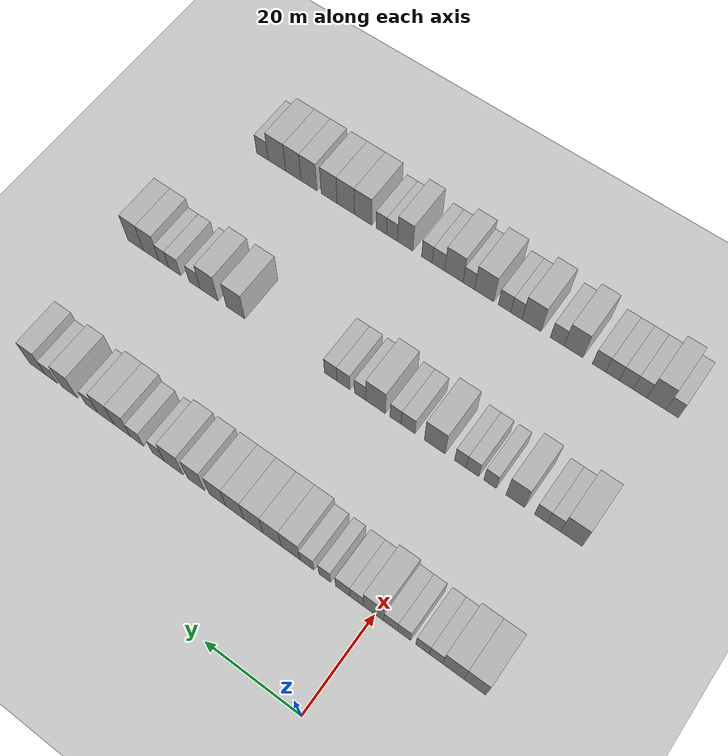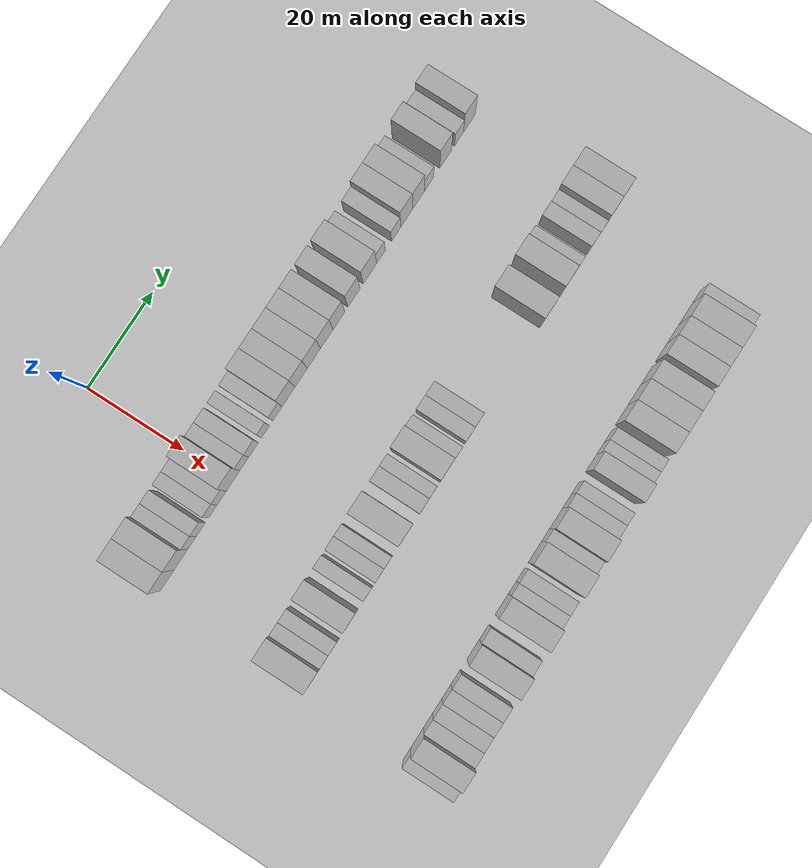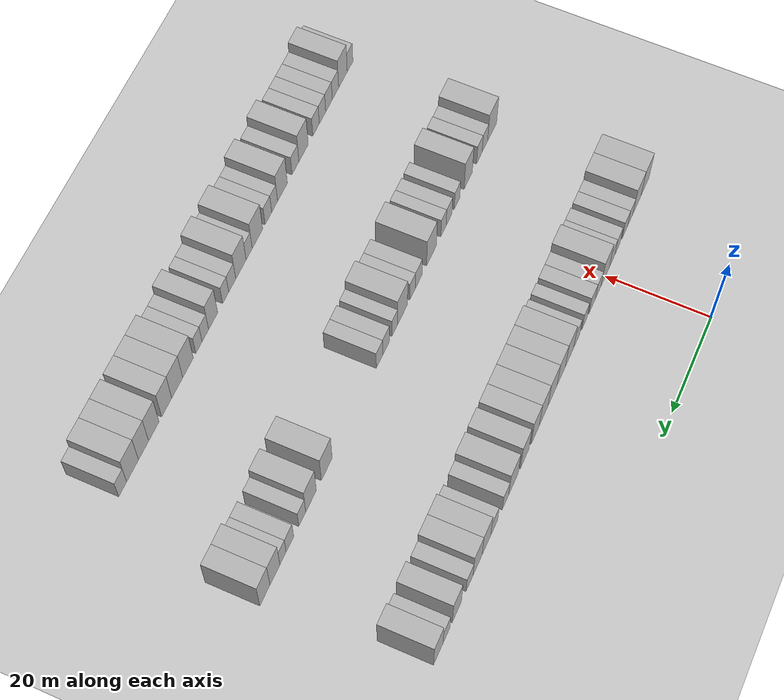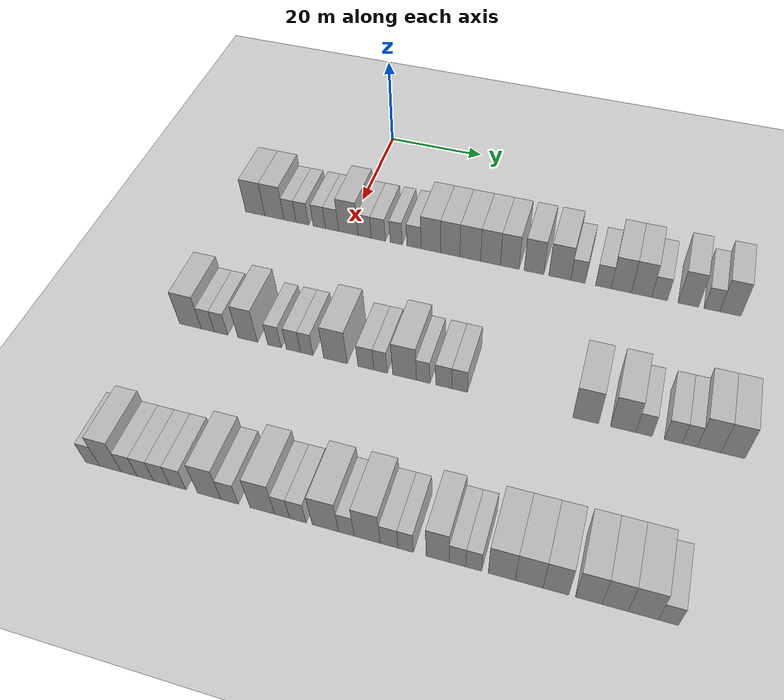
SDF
<sdf version="1.6">
 <world name="default">
  <include><name>ground_plane_1</name><uri>model://HANNAS_ground_plane</uri></include>
  <model name="building_108">
   <static>1</static>
   <pose>25.0000 -19.8867 0 0.000000 0.000000 0.000000</pose>
   <link name="link">
    <pose>0 0 4.50 0 0 0</pose>
    <collision name="collision"><geometry><box><size>10.0000 4.2221 9.0000</size></box></geometry></collision>
    <visual name="visual">
     <cast_shadows>0</cast_shadows>
     <geometry><box><size>10.0000 4.2221 9.0000</size></box></geometry>
     <material>
      <script>
       <uri>model://HANNAS_wall/materials/scripts</uri>
       <uri>model://HANNAS_wall/materials/textures</uri>
       <name>vrc/HANNAS_wall</name>
      </script>
     </material>
    </visual>
   </link>
  </model>
  <model name="building_109">
   <static>1</static>
   <pose>25.0000 -15.6771 0 0.000000 0.000000 0.000000</pose>
   <link name="link">
    <pose>0 0 4.50 0 0 0</pose>
    <collision name="collision"><geometry><box><size>10.0000 4.1972 9.0000</size></box></geometry></collision>
    <visual name="visual">
     <cast_shadows>0</cast_shadows>
     <geometry><box><size>10.0000 4.1972 9.0000</size></box></geometry>
     <material>
      <script>
       <uri>model://HANNAS_wall/materials/scripts</uri>
       <uri>model://HANNAS_wall/materials/textures</uri>
       <name>vrc/HANNAS_wall</name>
      </script>
     </material>
    </visual>
   </link>
  </model>
  <model name="building_110">
   <static>1</static>
   <pose>25.0000 -12.2551 0 0.000000 0.000000 0.000000</pose>
   <link name="link">
    <pose>0 0 3.00 0 0 0</pose>
    <collision name="collision"><geometry><box><size>10.0000 2.6469 6.0000</size></box></geometry></collision>
    <visual name="visual">
     <cast_shadows>0</cast_shadows>
     <geometry><box><size>10.0000 2.6469 6.0000</size></box></geometry>
     <material>
      <script>
       <uri>model://HANNAS_wall/materials/scripts</uri>
       <uri>model://HANNAS_wall/materials/textures</uri>
       <name>vrc/HANNAS_wall</name>
      </script>
     </material>
    </visual>
   </link>
  </model>
  <model name="building_111">
   <static>1</static>
   <pose>25.0000 -9.5757 0 0.000000 0.000000 0.000000</pose>
   <link name="link">
    <pose>0 0 3.00 0 0 0</pose>
    <collision name="collision"><geometry><box><size>10.0000 2.7119 6.0000</size></box></geometry></collision>
    <visual name="visual">
     <cast_shadows>0</cast_shadows>
     <geometry><box><size>10.0000 2.7119 6.0000</size></box></geometry>
     <material>
      <script>
       <uri>model://HANNAS_wall/materials/scripts</uri>
       <uri>model://HANNAS_wall/materials/textures</uri>
       <name>vrc/HANNAS_wall</name>
      </script>
     </material>
    </visual>
   </link>
  </model>
  <model name="building_112">
   <static>1</static>
   <pose>25.0000 -5.9079 0 0.000000 0.000000 0.000000</pose>
   <link name="link">
    <pose>0 0 3.00 0 0 0</pose>
    <collision name="collision"><geometry><box><size>10.0000 2.6238 6.0000</size></box></geometry></collision>
    <visual name="visual">
     <cast_shadows>0</cast_shadows>
     <geometry><box><size>10.0000 2.6238 6.0000</size></box></geometry>
     <material>
      <script>
       <uri>model://HANNAS_wall/materials/scripts</uri>
       <uri>model://HANNAS_wall/materials/textures</uri>
       <name>vrc/HANNAS_wall</name>
      </script>
     </material>
    </visual>
   </link>
  </model>
  <model name="building_113">
   <static>1</static>
   <pose>25.0000 -3.1915 0 0.000000 0.000000 0.000000</pose>
   <link name="link">
    <pose>0 0 3.00 0 0 0</pose>
    <collision name="collision"><geometry><box><size>10.0000 2.8089 6.0000</size></box></geometry></collision>
    <visual name="visual">
     <cast_shadows>0</cast_shadows>
     <geometry><box><size>10.0000 2.8089 6.0000</size></box></geometry>
     <material>
      <script>
       <uri>model://HANNAS_wall/materials/scripts</uri>
       <uri>model://HANNAS_wall/materials/textures</uri>
       <name>vrc/HANNAS_wall</name>
      </script>
     </material>
    </visual>
   </link>
  </model>
  <model name="building_114">
   <static>1</static>
   <pose>25.0000 0.3059 0 0.000000 0.000000 0.000000</pose>
   <link name="link">
    <pose>0 0 4.50 0 0 0</pose>
    <collision name="collision"><geometry><box><size>10.0000 4.1859 9.0000</size></box></geometry></collision>
    <visual name="visual">
     <cast_shadows>0</cast_shadows>
     <geometry><box><size>10.0000 4.1859 9.0000</size></box></geometry>
     <material>
      <script>
       <uri>model://HANNAS_wall/materials/scripts</uri>
       <uri>model://HANNAS_wall/materials/textures</uri>
       <name>vrc/HANNAS_wall</name>
      </script>
     </material>
    </visual>
   </link>
  </model>
  <model name="building_115">
   <static>1</static>
   <pose>25.0000 3.7715 0 0.000000 0.000000 0.000000</pose>
   <link name="link">
    <pose>0 0 3.00 0 0 0</pose>
    <collision name="collision"><geometry><box><size>10.0000 2.7454 6.0000</size></box></geometry></collision>
    <visual name="visual">
     <cast_shadows>0</cast_shadows>
     <geometry><box><size>10.0000 2.7454 6.0000</size></box></geometry>
     <material>
      <script>
       <uri>model://HANNAS_wall/materials/scripts</uri>
       <uri>model://HANNAS_wall/materials/textures</uri>
       <name>vrc/HANNAS_wall</name>
      </script>
     </material>
    </visual>
   </link>
  </model>
  <model name="building_116">
   <static>1</static>
   <pose>25.0000 6.6361 0 0.000000 0.000000 0.000000</pose>
   <link name="link">
    <pose>0 0 3.00 0 0 0</pose>
    <collision name="collision"><geometry><box><size>10.0000 2.9837 6.0000</size></box></geometry></collision>
    <visual name="visual">
     <cast_shadows>0</cast_shadows>
     <geometry><box><size>10.0000 2.9837 6.0000</size></box></geometry>
     <material>
      <script>
       <uri>model://HANNAS_wall/materials/scripts</uri>
       <uri>model://HANNAS_wall/materials/textures</uri>
       <name>vrc/HANNAS_wall</name>
      </script>
     </material>
    </visual>
   </link>
  </model>
  <model name="building_117">
   <static>1</static>
   <pose>25.0000 10.3712 0 0.000000 0.000000 0.000000</pose>
   <link name="link">
    <pose>0 0 3.00 0 0 0</pose>
    <collision name="collision"><geometry><box><size>10.0000 2.4865 6.0000</size></box></geometry></collision>
    <visual name="visual">
     <cast_shadows>0</cast_shadows>
     <geometry><box><size>10.0000 2.4865 6.0000</size></box></geometry>
     <material>
      <script>
       <uri>model://HANNAS_wall/materials/scripts</uri>
       <uri>model://HANNAS_wall/materials/textures</uri>
       <name>vrc/HANNAS_wall</name>
      </script>
     </material>
    </visual>
   </link>
  </model>
  <model name="building_118">
   <static>1</static>
   <pose>25.0000 14.0747 0 0.000000 0.000000 0.000000</pose>
   <link name="link">
    <pose>0 0 3.00 0 0 0</pose>
    <collision name="collision"><geometry><box><size>10.0000 2.9205 6.0000</size></box></geometry></collision>
    <visual name="visual">
     <cast_shadows>0</cast_shadows>
     <geometry><box><size>10.0000 2.9205 6.0000</size></box></geometry>
     <material>
      <script>
       <uri>model://HANNAS_wall/materials/scripts</uri>
       <uri>model://HANNAS_wall/materials/textures</uri>
       <name>vrc/HANNAS_wall</name>
      </script>
     </material>
    </visual>
   </link>
  </model>
  <model name="building_119">
   <static>1</static>
   <pose>25.0000 17.5486 0 0.000000 0.000000 0.000000</pose>
   <link name="link">
    <pose>0 0 4.50 0 0 0</pose>
    <collision name="collision"><geometry><box><size>10.0000 4.0274 9.0000</size></box></geometry></collision>
    <visual name="visual">
     <cast_shadows>0</cast_shadows>
     <geometry><box><size>10.0000 4.0274 9.0000</size></box></geometry>
     <material>
      <script>
       <uri>model://HANNAS_wall/materials/scripts</uri>
       <uri>model://HANNAS_wall/materials/textures</uri>
       <name>vrc/HANNAS_wall</name>
      </script>
     </material>
    </visual>
   </link>
  </model>
  <model name="building_120">
   <static>1</static>
   <pose>25.0000 21.5118 0 0.000000 0.000000 0.000000</pose>
   <link name="link">
    <pose>0 0 4.50 0 0 0</pose>
    <collision name="collision"><geometry><box><size>10.0000 3.8990 9.0000</size></box></geometry></collision>
    <visual name="visual">
     <cast_shadows>0</cast_shadows>
     <geometry><box><size>10.0000 3.8990 9.0000</size></box></geometry>
     <material>
      <script>
       <uri>model://HANNAS_wall/materials/scripts</uri>
       <uri>model://HANNAS_wall/materials/textures</uri>
       <name>vrc/HANNAS_wall</name>
      </script>
     </material>
    </visual>
   </link>
  </model>
  <model name="building_121">
   <static>1</static>
   <pose>25.0000 25.5494 0 0.000000 0.000000 0.000000</pose>
   <link name="link">
    <pose>0 0 4.50 0 0 0</pose>
    <collision name="collision"><geometry><box><size>10.0000 4.1761 9.0000</size></box></geometry></collision>
    <visual name="visual">
     <cast_shadows>0</cast_shadows>
     <geometry><box><size>10.0000 4.1761 9.0000</size></box></geometry>
     <material>
      <script>
       <uri>model://HANNAS_wall/materials/scripts</uri>
       <uri>model://HANNAS_wall/materials/textures</uri>
       <name>vrc/HANNAS_wall</name>
      </script>
     </material>
    </visual>
   </link>
  </model>
  <model name="building_122">
   <static>1</static>
   <pose>25.0000 29.6116 0 0.000000 0.000000 0.000000</pose>
   <link name="link">
    <pose>0 0 4.50 0 0 0</pose>
    <collision name="collision"><geometry><box><size>10.0000 3.9484 9.0000</size></box></geometry></collision>
    <visual name="visual">
     <cast_shadows>0</cast_shadows>
     <geometry><box><size>10.0000 3.9484 9.0000</size></box></geometry>
     <material>
      <script>
       <uri>model://HANNAS_wall/materials/scripts</uri>
       <uri>model://HANNAS_wall/materials/textures</uri>
       <name>vrc/HANNAS_wall</name>
      </script>
     </material>
    </visual>
   </link>
  </model>
  <model name="building_123">
   <static>1</static>
   <pose>25.0000 33.4507 0 0.000000 0.000000 0.000000</pose>
   <link name="link">
    <pose>0 0 4.50 0 0 0</pose>
    <collision name="collision"><geometry><box><size>10.0000 3.7298 9.0000</size></box></geometry></collision>
    <visual name="visual">
     <cast_shadows>0</cast_shadows>
     <geometry><box><size>10.0000 3.7298 9.0000</size></box></geometry>
     <material>
      <script>
       <uri>model://HANNAS_wall/materials/scripts</uri>
       <uri>model://HANNAS_wall/materials/textures</uri>
       <name>vrc/HANNAS_wall</name>
      </script>
     </material>
    </visual>
   </link>
  </model>
  <model name="building_124">
   <static>1</static>
   <pose>25.0000 38.2398 0 0.000000 0.000000 0.000000</pose>
   <link name="link">
    <pose>0 0 4.50 0 0 0</pose>
    <collision name="collision"><geometry><box><size>10.0000 3.8483 9.0000</size></box></geometry></collision>
    <visual name="visual">
     <cast_shadows>0</cast_shadows>
     <geometry><box><size>10.0000 3.8483 9.0000</size></box></geometry>
     <material>
      <script>
       <uri>model://HANNAS_wall/materials/scripts</uri>
       <uri>model://HANNAS_wall/materials/textures</uri>
       <name>vrc/HANNAS_wall</name>
      </script>
     </material>
    </visual>
   </link>
  </model>
  <model name="building_125">
   <static>1</static>
   <pose>25.0000 43.2984 0 0.000000 0.000000 0.000000</pose>
   <link name="link">
    <pose>0 0 4.50 0 0 0</pose>
    <collision name="collision"><geometry><box><size>10.0000 4.2689 9.0000</size></box></geometry></collision>
    <visual name="visual">
     <cast_shadows>0</cast_shadows>
     <geometry><box><size>10.0000 4.2689 9.0000</size></box></geometry>
     <material>
      <script>
       <uri>model://HANNAS_wall/materials/scripts</uri>
       <uri>model://HANNAS_wall/materials/textures</uri>
       <name>vrc/HANNAS_wall</name>
      </script>
     </material>
    </visual>
   </link>
  </model>
  <model name="building_126">
   <static>1</static>
   <pose>25.0000 46.8205 0 0.000000 0.000000 0.000000</pose>
   <link name="link">
    <pose>0 0 3.00 0 0 0</pose>
    <collision name="collision"><geometry><box><size>10.0000 2.7752 6.0000</size></box></geometry></collision>
    <visual name="visual">
     <cast_shadows>0</cast_shadows>
     <geometry><box><size>10.0000 2.7752 6.0000</size></box></geometry>
     <material>
      <script>
       <uri>model://HANNAS_wall/materials/scripts</uri>
       <uri>model://HANNAS_wall/materials/textures</uri>
       <name>vrc/HANNAS_wall</name>
      </script>
     </material>
    </visual>
   </link>
  </model>
  <model name="building_127">
   <static>1</static>
   <pose>25.0000 51.7054 0 0.000000 0.000000 0.000000</pose>
   <link name="link">
    <pose>0 0 3.00 0 0 0</pose>
    <collision name="collision"><geometry><box><size>10.0000 2.9946 6.0000</size></box></geometry></collision>
    <visual name="visual">
     <cast_shadows>0</cast_shadows>
     <geometry><box><size>10.0000 2.9946 6.0000</size></box></geometry>
     <material>
      <script>
       <uri>model://HANNAS_wall/materials/scripts</uri>
       <uri>model://HANNAS_wall/materials/textures</uri>
       <name>vrc/HANNAS_wall</name>
      </script>
     </material>
    </visual>
   </link>
  </model>
  <model name="building_128">
   <static>1</static>
   <pose>25.0000 55.1143 0 0.000000 0.000000 0.000000</pose>
   <link name="link">
    <pose>0 0 4.50 0 0 0</pose>
    <collision name="collision"><geometry><box><size>10.0000 3.8231 9.0000</size></box></geometry></collision>
    <visual name="visual">
     <cast_shadows>0</cast_shadows>
     <geometry><box><size>10.0000 3.8231 9.0000</size></box></geometry>
     <material>
      <script>
       <uri>model://HANNAS_wall/materials/scripts</uri>
       <uri>model://HANNAS_wall/materials/textures</uri>
       <name>vrc/HANNAS_wall</name>
      </script>
     </material>
    </visual>
   </link>
  </model>
  <model name="building_129">
   <static>1</static>
   <pose>25.0000 58.9477 0 0.000000 0.000000 0.000000</pose>
   <link name="link">
    <pose>0 0 4.50 0 0 0</pose>
    <collision name="collision"><geometry><box><size>10.0000 3.8438 9.0000</size></box></geometry></collision>
    <visual name="visual">
     <cast_shadows>0</cast_shadows>
     <geometry><box><size>10.0000 3.8438 9.0000</size></box></geometry>
     <material>
      <script>
       <uri>model://HANNAS_wall/materials/scripts</uri>
       <uri>model://HANNAS_wall/materials/textures</uri>
       <name>vrc/HANNAS_wall</name>
      </script>
     </material>
    </visual>
   </link>
  </model>
  <model name="building_130">
   <static>1</static>
   <pose>25.0000 62.3317 0 0.000000 0.000000 0.000000</pose>
   <link name="link">
    <pose>0 0 3.00 0 0 0</pose>
    <collision name="collision"><geometry><box><size>10.0000 2.9242 6.0000</size></box></geometry></collision>
    <visual name="visual">
     <cast_shadows>0</cast_shadows>
     <geometry><box><size>10.0000 2.9242 6.0000</size></box></geometry>
     <material>
      <script>
       <uri>model://HANNAS_wall/materials/scripts</uri>
       <uri>model://HANNAS_wall/materials/textures</uri>
       <name>vrc/HANNAS_wall</name>
      </script>
     </material>
    </visual>
   </link>
  </model>
  <model name="building_131">
   <static>1</static>
   <pose>25.0000 67.6863 0 0.000000 0.000000 0.000000</pose>
   <link name="link">
    <pose>0 0 4.50 0 0 0</pose>
    <collision name="collision"><geometry><box><size>10.0000 3.7849 9.0000</size></box></geometry></collision>
    <visual name="visual">
     <cast_shadows>0</cast_shadows>
     <geometry><box><size>10.0000 3.7849 9.0000</size></box></geometry>
     <material>
      <script>
       <uri>model://HANNAS_wall/materials/scripts</uri>
       <uri>model://HANNAS_wall/materials/textures</uri>
       <name>vrc/HANNAS_wall</name>
      </script>
     </material>
    </visual>
   </link>
  </model>
  <model name="building_132">
   <static>1</static>
   <pose>25.0000 72.0193 0 0.000000 0.000000 0.000000</pose>
   <link name="link">
    <pose>0 0 3.00 0 0 0</pose>
    <collision name="collision"><geometry><box><size>10.0000 2.8810 6.0000</size></box></geometry></collision>
    <visual name="visual">
     <cast_shadows>0</cast_shadows>
     <geometry><box><size>10.0000 2.8810 6.0000</size></box></geometry>
     <material>
      <script>
       <uri>model://HANNAS_wall/materials/scripts</uri>
       <uri>model://HANNAS_wall/materials/textures</uri>
       <name>vrc/HANNAS_wall</name>
      </script>
     </material>
    </visual>
   </link>
  </model>
  <model name="building_133">
   <static>1</static>
   <pose>25.0000 75.3840 0 0.000000 0.000000 0.000000</pose>
   <link name="link">
    <pose>0 0 4.50 0 0 0</pose>
    <collision name="collision"><geometry><box><size>10.0000 3.8486 9.0000</size></box></geometry></collision>
    <visual name="visual">
     <cast_shadows>0</cast_shadows>
     <geometry><box><size>10.0000 3.8486 9.0000</size></box></geometry>
     <material>
      <script>
       <uri>model://HANNAS_wall/materials/scripts</uri>
       <uri>model://HANNAS_wall/materials/textures</uri>
       <name>vrc/HANNAS_wall</name>
      </script>
     </material>
    </visual>
   </link>
  </model>
  <model name="building_337">
   <static>1</static>
   <pose>55.0000 -19.5377 0 0.000000 0.000000 0.000000</pose>
   <link name="link">
    <pose>0 0 4.50 0 0 0</pose>
    <collision name="collision"><geometry><box><size>10.0000 4.3469 9.0000</size></box></geometry></collision>
    <visual name="visual">
     <cast_shadows>0</cast_shadows>
     <geometry><box><size>10.0000 4.3469 9.0000</size></box></geometry>
     <material>
      <script>
       <uri>model://HANNAS_wall/materials/scripts</uri>
       <uri>model://HANNAS_wall/materials/textures</uri>
       <name>vrc/HANNAS_wall</name>
      </script>
     </material>
    </visual>
   </link>
  </model>
  <model name="building_338">
   <static>1</static>
   <pose>55.0000 -16.0597 0 0.000000 0.000000 0.000000</pose>
   <link name="link">
    <pose>0 0 3.00 0 0 0</pose>
    <collision name="collision"><geometry><box><size>10.0000 2.6090 6.0000</size></box></geometry></collision>
    <visual name="visual">
     <cast_shadows>0</cast_shadows>
     <geometry><box><size>10.0000 2.6090 6.0000</size></box></geometry>
     <material>
      <script>
       <uri>model://HANNAS_wall/materials/scripts</uri>
       <uri>model://HANNAS_wall/materials/textures</uri>
       <name>vrc/HANNAS_wall</name>
      </script>
     </material>
    </visual>
   </link>
  </model>
  <model name="building_339">
   <static>1</static>
   <pose>55.0000 -13.4290 0 0.000000 0.000000 0.000000</pose>
   <link name="link">
    <pose>0 0 3.00 0 0 0</pose>
    <collision name="collision"><geometry><box><size>10.0000 2.6525 6.0000</size></box></geometry></collision>
    <visual name="visual">
     <cast_shadows>0</cast_shadows>
     <geometry><box><size>10.0000 2.6525 6.0000</size></box></geometry>
     <material>
      <script>
       <uri>model://HANNAS_wall/materials/scripts</uri>
       <uri>model://HANNAS_wall/materials/textures</uri>
       <name>vrc/HANNAS_wall</name>
      </script>
     </material>
    </visual>
   </link>
  </model>
  <model name="building_340">
   <static>1</static>
   <pose>55.0000 -8.1745 0 0.000000 0.000000 0.000000</pose>
   <link name="link">
    <pose>0 0 4.50 0 0 0</pose>
    <collision name="collision"><geometry><box><size>10.0000 3.8565 9.0000</size></box></geometry></collision>
    <visual name="visual">
     <cast_shadows>0</cast_shadows>
     <geometry><box><size>10.0000 3.8565 9.0000</size></box></geometry>
     <material>
      <script>
       <uri>model://HANNAS_wall/materials/scripts</uri>
       <uri>model://HANNAS_wall/materials/textures</uri>
       <name>vrc/HANNAS_wall</name>
      </script>
     </material>
    </visual>
   </link>
  </model>
  <model name="building_341">
   <static>1</static>
   <pose>55.0000 -2.9359 0 0.000000 0.000000 0.000000</pose>
   <link name="link">
    <pose>0 0 3.00 0 0 0</pose>
    <collision name="collision"><geometry><box><size>10.0000 2.6207 6.0000</size></box></geometry></collision>
    <visual name="visual">
     <cast_shadows>0</cast_shadows>
     <geometry><box><size>10.0000 2.6207 6.0000</size></box></geometry>
     <material>
      <script>
       <uri>model://HANNAS_wall/materials/scripts</uri>
       <uri>model://HANNAS_wall/materials/textures</uri>
       <name>vrc/HANNAS_wall</name>
      </script>
     </material>
    </visual>
   </link>
  </model>
  <model name="building_342">
   <static>1</static>
   <pose>55.0000 0.7239 0 0.000000 0.000000 0.000000</pose>
   <link name="link">
    <pose>0 0 3.00 0 0 0</pose>
    <collision name="collision"><geometry><box><size>10.0000 2.6989 6.0000</size></box></geometry></collision>
    <visual name="visual">
     <cast_shadows>0</cast_shadows>
     <geometry><box><size>10.0000 2.6989 6.0000</size></box></geometry>
     <material>
      <script>
       <uri>model://HANNAS_wall/materials/scripts</uri>
       <uri>model://HANNAS_wall/materials/textures</uri>
       <name>vrc/HANNAS_wall</name>
      </script>
     </material>
    </visual>
   </link>
  </model>
  <model name="building_343">
   <static>1</static>
   <pose>55.0000 3.2800 0 0.000000 0.000000 0.000000</pose>
   <link name="link">
    <pose>0 0 3.00 0 0 0</pose>
    <collision name="collision"><geometry><box><size>10.0000 2.4134 6.0000</size></box></geometry></collision>
    <visual name="visual">
     <cast_shadows>0</cast_shadows>
     <geometry><box><size>10.0000 2.4134 6.0000</size></box></geometry>
     <material>
      <script>
       <uri>model://HANNAS_wall/materials/scripts</uri>
       <uri>model://HANNAS_wall/materials/textures</uri>
       <name>vrc/HANNAS_wall</name>
      </script>
     </material>
    </visual>
   </link>
  </model>
  <model name="building_344">
   <static>1</static>
   <pose>55.0000 8.7082 0 0.000000 0.000000 0.000000</pose>
   <link name="link">
    <pose>0 0 4.50 0 0 0</pose>
    <collision name="collision"><geometry><box><size>10.0000 4.4430 9.0000</size></box></geometry></collision>
    <visual name="visual">
     <cast_shadows>0</cast_shadows>
     <geometry><box><size>10.0000 4.4430 9.0000</size></box></geometry>
     <material>
      <script>
       <uri>model://HANNAS_wall/materials/scripts</uri>
       <uri>model://HANNAS_wall/materials/textures</uri>
       <name>vrc/HANNAS_wall</name>
      </script>
     </material>
    </visual>
   </link>
  </model>
  <model name="building_345">
   <static>1</static>
   <pose>55.0000 14.4266 0 0.000000 0.000000 0.000000</pose>
   <link name="link">
    <pose>0 0 3.00 0 0 0</pose>
    <collision name="collision"><geometry><box><size>10.0000 2.9936 6.0000</size></box></geometry></collision>
    <visual name="visual">
     <cast_shadows>0</cast_shadows>
     <geometry><box><size>10.0000 2.9936 6.0000</size></box></geometry>
     <material>
      <script>
       <uri>model://HANNAS_wall/materials/scripts</uri>
       <uri>model://HANNAS_wall/materials/textures</uri>
       <name>vrc/HANNAS_wall</name>
      </script>
     </material>
    </visual>
   </link>
  </model>
  <model name="building_346">
   <static>1</static>
   <pose>55.0000 17.1476 0 0.000000 0.000000 0.000000</pose>
   <link name="link">
    <pose>0 0 3.00 0 0 0</pose>
    <collision name="collision"><geometry><box><size>10.0000 2.4485 6.0000</size></box></geometry></collision>
    <visual name="visual">
     <cast_shadows>0</cast_shadows>
     <geometry><box><size>10.0000 2.4485 6.0000</size></box></geometry>
     <material>
      <script>
       <uri>model://HANNAS_wall/materials/scripts</uri>
       <uri>model://HANNAS_wall/materials/textures</uri>
       <name>vrc/HANNAS_wall</name>
      </script>
     </material>
    </visual>
   </link>
  </model>
  <model name="building_347">
   <static>1</static>
   <pose>55.0000 21.5474 0 0.000000 0.000000 0.000000</pose>
   <link name="link">
    <pose>0 0 4.50 0 0 0</pose>
    <collision name="collision"><geometry><box><size>10.0000 4.3510 9.0000</size></box></geometry></collision>
    <visual name="visual">
     <cast_shadows>0</cast_shadows>
     <geometry><box><size>10.0000 4.3510 9.0000</size></box></geometry>
     <material>
      <script>
       <uri>model://HANNAS_wall/materials/scripts</uri>
       <uri>model://HANNAS_wall/materials/textures</uri>
       <name>vrc/HANNAS_wall</name>
      </script>
     </material>
    </visual>
   </link>
  </model>
  <model name="building_348">
   <static>1</static>
   <pose>55.0000 24.9645 0 0.000000 0.000000 0.000000</pose>
   <link name="link">
    <pose>0 0 3.00 0 0 0</pose>
    <collision name="collision"><geometry><box><size>10.0000 2.4834 6.0000</size></box></geometry></collision>
    <visual name="visual">
     <cast_shadows>0</cast_shadows>
     <geometry><box><size>10.0000 2.4834 6.0000</size></box></geometry>
     <material>
      <script>
       <uri>model://HANNAS_wall/materials/scripts</uri>
       <uri>model://HANNAS_wall/materials/textures</uri>
       <name>vrc/HANNAS_wall</name>
      </script>
     </material>
    </visual>
   </link>
  </model>
  <model name="building_349">
   <static>1</static>
   <pose>55.0000 28.6586 0 0.000000 0.000000 0.000000</pose>
   <link name="link">
    <pose>0 0 3.00 0 0 0</pose>
    <collision name="collision"><geometry><box><size>10.0000 2.9048 6.0000</size></box></geometry></collision>
    <visual name="visual">
     <cast_shadows>0</cast_shadows>
     <geometry><box><size>10.0000 2.9048 6.0000</size></box></geometry>
     <material>
      <script>
       <uri>model://HANNAS_wall/materials/scripts</uri>
       <uri>model://HANNAS_wall/materials/textures</uri>
       <name>vrc/HANNAS_wall</name>
      </script>
     </material>
    </visual>
   </link>
  </model>
  <model name="building_350">
   <static>1</static>
   <pose>55.0000 31.5164 0 0.000000 0.000000 0.000000</pose>
   <link name="link">
    <pose>0 0 3.00 0 0 0</pose>
    <collision name="collision"><geometry><box><size>10.0000 2.8107 6.0000</size></box></geometry></collision>
    <visual name="visual">
     <cast_shadows>0</cast_shadows>
     <geometry><box><size>10.0000 2.8107 6.0000</size></box></geometry>
     <material>
      <script>
       <uri>model://HANNAS_wall/materials/scripts</uri>
       <uri>model://HANNAS_wall/materials/textures</uri>
       <name>vrc/HANNAS_wall</name>
      </script>
     </material>
    </visual>
   </link>
  </model>
  <model name="building_351">
   <static>1</static>
   <pose>55.0000 53.5176 0 0.000000 0.000000 0.000000</pose>
   <link name="link">
    <pose>0 0 4.50 0 0 0</pose>
    <collision name="collision"><geometry><box><size>10.0000 4.3972 9.0000</size></box></geometry></collision>
    <visual name="visual">
     <cast_shadows>0</cast_shadows>
     <geometry><box><size>10.0000 4.3972 9.0000</size></box></geometry>
     <material>
      <script>
       <uri>model://HANNAS_wall/materials/scripts</uri>
       <uri>model://HANNAS_wall/materials/textures</uri>
       <name>vrc/HANNAS_wall</name>
      </script>
     </material>
    </visual>
   </link>
  </model>
  <model name="building_352">
   <static>1</static>
   <pose>55.0000 59.8323 0 0.000000 0.000000 0.000000</pose>
   <link name="link">
    <pose>0 0 4.50 0 0 0</pose>
    <collision name="collision"><geometry><box><size>10.0000 4.2324 9.0000</size></box></geometry></collision>
    <visual name="visual">
     <cast_shadows>0</cast_shadows>
     <geometry><box><size>10.0000 4.2324 9.0000</size></box></geometry>
     <material>
      <script>
       <uri>model://HANNAS_wall/materials/scripts</uri>
       <uri>model://HANNAS_wall/materials/textures</uri>
       <name>vrc/HANNAS_wall</name>
      </script>
     </material>
    </visual>
   </link>
  </model>
  <model name="building_353">
   <static>1</static>
   <pose>55.0000 63.3143 0 0.000000 0.000000 0.000000</pose>
   <link name="link">
    <pose>0 0 3.00 0 0 0</pose>
    <collision name="collision"><geometry><box><size>10.0000 2.7315 6.0000</size></box></geometry></collision>
    <visual name="visual">
     <cast_shadows>0</cast_shadows>
     <geometry><box><size>10.0000 2.7315 6.0000</size></box></geometry>
     <material>
      <script>
       <uri>model://HANNAS_wall/materials/scripts</uri>
       <uri>model://HANNAS_wall/materials/textures</uri>
       <name>vrc/HANNAS_wall</name>
      </script>
     </material>
    </visual>
   </link>
  </model>
  <model name="building_354">
   <static>1</static>
   <pose>55.0000 68.1529 0 0.000000 0.000000 0.000000</pose>
   <link name="link">
    <pose>0 0 3.00 0 0 0</pose>
    <collision name="collision"><geometry><box><size>10.0000 2.9458 6.0000</size></box></geometry></collision>
    <visual name="visual">
     <cast_shadows>0</cast_shadows>
     <geometry><box><size>10.0000 2.9458 6.0000</size></box></geometry>
     <material>
      <script>
       <uri>model://HANNAS_wall/materials/scripts</uri>
       <uri>model://HANNAS_wall/materials/textures</uri>
       <name>vrc/HANNAS_wall</name>
      </script>
     </material>
    </visual>
   </link>
  </model>
  <model name="building_355">
   <static>1</static>
   <pose>55.0000 70.8356 0 0.000000 0.000000 0.000000</pose>
   <link name="link">
    <pose>0 0 3.00 0 0 0</pose>
    <collision name="collision"><geometry><box><size>10.0000 2.4195 6.0000</size></box></geometry></collision>
    <visual name="visual">
     <cast_shadows>0</cast_shadows>
     <geometry><box><size>10.0000 2.4195 6.0000</size></box></geometry>
     <material>
      <script>
       <uri>model://HANNAS_wall/materials/scripts</uri>
       <uri>model://HANNAS_wall/materials/textures</uri>
       <name>vrc/HANNAS_wall</name>
      </script>
     </material>
    </visual>
   </link>
  </model>
  <model name="building_356">
   <static>1</static>
   <pose>55.0000 73.9621 0 0.000000 0.000000 0.000000</pose>
   <link name="link">
    <pose>0 0 4.50 0 0 0</pose>
    <collision name="collision"><geometry><box><size>10.0000 3.8335 9.0000</size></box></geometry></collision>
    <visual name="visual">
     <cast_shadows>0</cast_shadows>
     <geometry><box><size>10.0000 3.8335 9.0000</size></box></geometry>
     <material>
      <script>
       <uri>model://HANNAS_wall/materials/scripts</uri>
       <uri>model://HANNAS_wall/materials/textures</uri>
       <name>vrc/HANNAS_wall</name>
      </script>
     </material>
    </visual>
   </link>
  </model>
  <model name="building_357">
   <static>1</static>
   <pose>55.0000 77.8102 0 0.000000 0.000000 0.000000</pose>
   <link name="link">
    <pose>0 0 4.50 0 0 0</pose>
    <collision name="collision"><geometry><box><size>10.0000 3.8626 9.0000</size></box></geometry></collision>
    <visual name="visual">
     <cast_shadows>0</cast_shadows>
     <geometry><box><size>10.0000 3.8626 9.0000</size></box></geometry>
     <material>
      <script>
       <uri>model://HANNAS_wall/materials/scripts</uri>
       <uri>model://HANNAS_wall/materials/textures</uri>
       <name>vrc/HANNAS_wall</name>
      </script>
     </material>
    </visual>
   </link>
  </model>
  <model name="building_571">
   <static>1</static>
   <pose>85.0000 -22.0204 0 0.000000 0.000000 0.000000</pose>
   <link name="link">
    <pose>0 0 3.00 0 0 0</pose>
    <collision name="collision"><geometry><box><size>10.0000 2.5566 6.0000</size></box></geometry></collision>
    <visual name="visual">
     <cast_shadows>0</cast_shadows>
     <geometry><box><size>10.0000 2.5566 6.0000</size></box></geometry>
     <material>
      <script>
       <uri>model://HANNAS_wall/materials/scripts</uri>
       <uri>model://HANNAS_wall/materials/textures</uri>
       <name>vrc/HANNAS_wall</name>
      </script>
     </material>
    </visual>
   </link>
  </model>
  <model name="building_572">
   <static>1</static>
   <pose>85.0000 -18.8036 0 0.000000 0.000000 0.000000</pose>
   <link name="link">
    <pose>0 0 4.50 0 0 0</pose>
    <collision name="collision"><geometry><box><size>10.0000 3.8770 9.0000</size></box></geometry></collision>
    <visual name="visual">
     <cast_shadows>0</cast_shadows>
     <geometry><box><size>10.0000 3.8770 9.0000</size></box></geometry>
     <material>
      <script>
       <uri>model://HANNAS_wall/materials/scripts</uri>
       <uri>model://HANNAS_wall/materials/textures</uri>
       <name>vrc/HANNAS_wall</name>
      </script>
     </material>
    </visual>
   </link>
  </model>
  <model name="building_573">
   <static>1</static>
   <pose>85.0000 -15.4370 0 0.000000 0.000000 0.000000</pose>
   <link name="link">
    <pose>0 0 3.00 0 0 0</pose>
    <collision name="collision"><geometry><box><size>10.0000 2.8562 6.0000</size></box></geometry></collision>
    <visual name="visual">
     <cast_shadows>0</cast_shadows>
     <geometry><box><size>10.0000 2.8562 6.0000</size></box></geometry>
     <material>
      <script>
       <uri>model://HANNAS_wall/materials/scripts</uri>
       <uri>model://HANNAS_wall/materials/textures</uri>
       <name>vrc/HANNAS_wall</name>
      </script>
     </material>
    </visual>
   </link>
  </model>
  <model name="building_574">
   <static>1</static>
   <pose>85.0000 -12.5358 0 0.000000 0.000000 0.000000</pose>
   <link name="link">
    <pose>0 0 3.00 0 0 0</pose>
    <collision name="collision"><geometry><box><size>10.0000 2.9464 6.0000</size></box></geometry></collision>
    <visual name="visual">
     <cast_shadows>0</cast_shadows>
     <geometry><box><size>10.0000 2.9464 6.0000</size></box></geometry>
     <material>
      <script>
       <uri>model://HANNAS_wall/materials/scripts</uri>
       <uri>model://HANNAS_wall/materials/textures</uri>
       <name>vrc/HANNAS_wall</name>
      </script>
     </material>
    </visual>
   </link>
  </model>
  <model name="building_575">
   <static>1</static>
   <pose>85.0000 -9.6523 0 0.000000 0.000000 0.000000</pose>
   <link name="link">
    <pose>0 0 3.00 0 0 0</pose>
    <collision name="collision"><geometry><box><size>10.0000 2.8206 6.0000</size></box></geometry></collision>
    <visual name="visual">
     <cast_shadows>0</cast_shadows>
     <geometry><box><size>10.0000 2.8206 6.0000</size></box></geometry>
     <material>
      <script>
       <uri>model://HANNAS_wall/materials/scripts</uri>
       <uri>model://HANNAS_wall/materials/textures</uri>
       <name>vrc/HANNAS_wall</name>
      </script>
     </material>
    </visual>
   </link>
  </model>
  <model name="building_576">
   <static>1</static>
   <pose>85.0000 -6.8043 0 0.000000 0.000000 0.000000</pose>
   <link name="link">
    <pose>0 0 3.00 0 0 0</pose>
    <collision name="collision"><geometry><box><size>10.0000 2.8754 6.0000</size></box></geometry></collision>
    <visual name="visual">
     <cast_shadows>0</cast_shadows>
     <geometry><box><size>10.0000 2.8754 6.0000</size></box></geometry>
     <material>
      <script>
       <uri>model://HANNAS_wall/materials/scripts</uri>
       <uri>model://HANNAS_wall/materials/textures</uri>
       <name>vrc/HANNAS_wall</name>
      </script>
     </material>
    </visual>
   </link>
  </model>
  <model name="building_577">
   <static>1</static>
   <pose>85.0000 -1.3572 0 0.000000 0.000000 0.000000</pose>
   <link name="link">
    <pose>0 0 4.50 0 0 0</pose>
    <collision name="collision"><geometry><box><size>10.0000 4.0188 9.0000</size></box></geometry></collision>
    <visual name="visual">
     <cast_shadows>0</cast_shadows>
     <geometry><box><size>10.0000 4.0188 9.0000</size></box></geometry>
     <material>
      <script>
       <uri>model://HANNAS_wall/materials/scripts</uri>
       <uri>model://HANNAS_wall/materials/textures</uri>
       <name>vrc/HANNAS_wall</name>
      </script>
     </material>
    </visual>
   </link>
  </model>
  <model name="building_578">
   <static>1</static>
   <pose>85.0000 2.1469 0 0.000000 0.000000 0.000000</pose>
   <link name="link">
    <pose>0 0 3.00 0 0 0</pose>
    <collision name="collision"><geometry><box><size>10.0000 2.9892 6.0000</size></box></geometry></collision>
    <visual name="visual">
     <cast_shadows>0</cast_shadows>
     <geometry><box><size>10.0000 2.9892 6.0000</size></box></geometry>
     <material>
      <script>
       <uri>model://HANNAS_wall/materials/scripts</uri>
       <uri>model://HANNAS_wall/materials/textures</uri>
       <name>vrc/HANNAS_wall</name>
      </script>
     </material>
    </visual>
   </link>
  </model>
  <model name="building_579">
   <static>1</static>
   <pose>85.0000 7.7203 0 0.000000 0.000000 0.000000</pose>
   <link name="link">
    <pose>0 0 4.50 0 0 0</pose>
    <collision name="collision"><geometry><box><size>10.0000 4.1577 9.0000</size></box></geometry></collision>
    <visual name="visual">
     <cast_shadows>0</cast_shadows>
     <geometry><box><size>10.0000 4.1577 9.0000</size></box></geometry>
     <material>
      <script>
       <uri>model://HANNAS_wall/materials/scripts</uri>
       <uri>model://HANNAS_wall/materials/textures</uri>
       <name>vrc/HANNAS_wall</name>
      </script>
     </material>
    </visual>
   </link>
  </model>
  <model name="building_580">
   <static>1</static>
   <pose>85.0000 11.0411 0 0.000000 0.000000 0.000000</pose>
   <link name="link">
    <pose>0 0 3.00 0 0 0</pose>
    <collision name="collision"><geometry><box><size>10.0000 2.4839 6.0000</size></box></geometry></collision>
    <visual name="visual">
     <cast_shadows>0</cast_shadows>
     <geometry><box><size>10.0000 2.4839 6.0000</size></box></geometry>
     <material>
      <script>
       <uri>model://HANNAS_wall/materials/scripts</uri>
       <uri>model://HANNAS_wall/materials/textures</uri>
       <name>vrc/HANNAS_wall</name>
      </script>
     </material>
    </visual>
   </link>
  </model>
  <model name="building_581">
   <static>1</static>
   <pose>85.0000 13.6671 0 0.000000 0.000000 0.000000</pose>
   <link name="link">
    <pose>0 0 3.00 0 0 0</pose>
    <collision name="collision"><geometry><box><size>10.0000 2.7682 6.0000</size></box></geometry></collision>
    <visual name="visual">
     <cast_shadows>0</cast_shadows>
     <geometry><box><size>10.0000 2.7682 6.0000</size></box></geometry>
     <material>
      <script>
       <uri>model://HANNAS_wall/materials/scripts</uri>
       <uri>model://HANNAS_wall/materials/textures</uri>
       <name>vrc/HANNAS_wall</name>
      </script>
     </material>
    </visual>
   </link>
  </model>
  <model name="building_582">
   <static>1</static>
   <pose>85.0000 18.2171 0 0.000000 0.000000 0.000000</pose>
   <link name="link">
    <pose>0 0 4.50 0 0 0</pose>
    <collision name="collision"><geometry><box><size>10.0000 4.3318 9.0000</size></box></geometry></collision>
    <visual name="visual">
     <cast_shadows>0</cast_shadows>
     <geometry><box><size>10.0000 4.3318 9.0000</size></box></geometry>
     <material>
      <script>
       <uri>model://HANNAS_wall/materials/scripts</uri>
       <uri>model://HANNAS_wall/materials/textures</uri>
       <name>vrc/HANNAS_wall</name>
      </script>
     </material>
    </visual>
   </link>
  </model>
  <model name="building_583">
   <static>1</static>
   <pose>85.0000 21.6565 0 0.000000 0.000000 0.000000</pose>
   <link name="link">
    <pose>0 0 3.00 0 0 0</pose>
    <collision name="collision"><geometry><box><size>10.0000 2.5470 6.0000</size></box></geometry></collision>
    <visual name="visual">
     <cast_shadows>0</cast_shadows>
     <geometry><box><size>10.0000 2.5470 6.0000</size></box></geometry>
     <material>
      <script>
       <uri>model://HANNAS_wall/materials/scripts</uri>
       <uri>model://HANNAS_wall/materials/textures</uri>
       <name>vrc/HANNAS_wall</name>
      </script>
     </material>
    </visual>
   </link>
  </model>
  <model name="building_584">
   <static>1</static>
   <pose>85.0000 25.0267 0 0.000000 0.000000 0.000000</pose>
   <link name="link">
    <pose>0 0 4.50 0 0 0</pose>
    <collision name="collision"><geometry><box><size>10.0000 4.1935 9.0000</size></box></geometry></collision>
    <visual name="visual">
     <cast_shadows>0</cast_shadows>
     <geometry><box><size>10.0000 4.1935 9.0000</size></box></geometry>
     <material>
      <script>
       <uri>model://HANNAS_wall/materials/scripts</uri>
       <uri>model://HANNAS_wall/materials/textures</uri>
       <name>vrc/HANNAS_wall</name>
      </script>
     </material>
    </visual>
   </link>
  </model>
  <model name="building_585">
   <static>1</static>
   <pose>85.0000 28.5560 0 0.000000 0.000000 0.000000</pose>
   <link name="link">
    <pose>0 0 3.00 0 0 0</pose>
    <collision name="collision"><geometry><box><size>10.0000 2.8651 6.0000</size></box></geometry></collision>
    <visual name="visual">
     <cast_shadows>0</cast_shadows>
     <geometry><box><size>10.0000 2.8651 6.0000</size></box></geometry>
     <material>
      <script>
       <uri>model://HANNAS_wall/materials/scripts</uri>
       <uri>model://HANNAS_wall/materials/textures</uri>
       <name>vrc/HANNAS_wall</name>
      </script>
     </material>
    </visual>
   </link>
  </model>
  <model name="building_586">
   <static>1</static>
   <pose>85.0000 31.2066 0 0.000000 0.000000 0.000000</pose>
   <link name="link">
    <pose>0 0 3.00 0 0 0</pose>
    <collision name="collision"><geometry><box><size>10.0000 2.4360 6.0000</size></box></geometry></collision>
    <visual name="visual">
     <cast_shadows>0</cast_shadows>
     <geometry><box><size>10.0000 2.4360 6.0000</size></box></geometry>
     <material>
      <script>
       <uri>model://HANNAS_wall/materials/scripts</uri>
       <uri>model://HANNAS_wall/materials/textures</uri>
       <name>vrc/HANNAS_wall</name>
      </script>
     </material>
    </visual>
   </link>
  </model>
  <model name="building_587">
   <static>1</static>
   <pose>85.0000 36.2253 0 0.000000 0.000000 0.000000</pose>
   <link name="link">
    <pose>0 0 4.50 0 0 0</pose>
    <collision name="collision"><geometry><box><size>10.0000 3.6014 9.0000</size></box></geometry></collision>
    <visual name="visual">
     <cast_shadows>0</cast_shadows>
     <geometry><box><size>10.0000 3.6014 9.0000</size></box></geometry>
     <material>
      <script>
       <uri>model://HANNAS_wall/materials/scripts</uri>
       <uri>model://HANNAS_wall/materials/textures</uri>
       <name>vrc/HANNAS_wall</name>
      </script>
     </material>
    </visual>
   </link>
  </model>
  <model name="building_588">
   <static>1</static>
   <pose>85.0000 39.3142 0 0.000000 0.000000 0.000000</pose>
   <link name="link">
    <pose>0 0 3.00 0 0 0</pose>
    <collision name="collision"><geometry><box><size>10.0000 2.5764 6.0000</size></box></geometry></collision>
    <visual name="visual">
     <cast_shadows>0</cast_shadows>
     <geometry><box><size>10.0000 2.5764 6.0000</size></box></geometry>
     <material>
      <script>
       <uri>model://HANNAS_wall/materials/scripts</uri>
       <uri>model://HANNAS_wall/materials/textures</uri>
       <name>vrc/HANNAS_wall</name>
      </script>
     </material>
    </visual>
   </link>
  </model>
  <model name="building_589">
   <static>1</static>
   <pose>85.0000 41.8314 0 0.000000 0.000000 0.000000</pose>
   <link name="link">
    <pose>0 0 3.00 0 0 0</pose>
    <collision name="collision"><geometry><box><size>10.0000 2.4581 6.0000</size></box></geometry></collision>
    <visual name="visual">
     <cast_shadows>0</cast_shadows>
     <geometry><box><size>10.0000 2.4581 6.0000</size></box></geometry>
     <material>
      <script>
       <uri>model://HANNAS_wall/materials/scripts</uri>
       <uri>model://HANNAS_wall/materials/textures</uri>
       <name>vrc/HANNAS_wall</name>
      </script>
     </material>
    </visual>
   </link>
  </model>
  <model name="building_590">
   <static>1</static>
   <pose>85.0000 46.1304 0 0.000000 0.000000 0.000000</pose>
   <link name="link">
    <pose>0 0 4.50 0 0 0</pose>
    <collision name="collision"><geometry><box><size>10.0000 4.1398 9.0000</size></box></geometry></collision>
    <visual name="visual">
     <cast_shadows>0</cast_shadows>
     <geometry><box><size>10.0000 4.1398 9.0000</size></box></geometry>
     <material>
      <script>
       <uri>model://HANNAS_wall/materials/scripts</uri>
       <uri>model://HANNAS_wall/materials/textures</uri>
       <name>vrc/HANNAS_wall</name>
      </script>
     </material>
    </visual>
   </link>
  </model>
  <model name="building_591">
   <static>1</static>
   <pose>85.0000 50.2937 0 0.000000 0.000000 0.000000</pose>
   <link name="link">
    <pose>0 0 4.50 0 0 0</pose>
    <collision name="collision"><geometry><box><size>10.0000 4.1868 9.0000</size></box></geometry></collision>
    <visual name="visual">
     <cast_shadows>0</cast_shadows>
     <geometry><box><size>10.0000 4.1868 9.0000</size></box></geometry>
     <material>
      <script>
       <uri>model://HANNAS_wall/materials/scripts</uri>
       <uri>model://HANNAS_wall/materials/textures</uri>
       <name>vrc/HANNAS_wall</name>
      </script>
     </material>
    </visual>
   </link>
  </model>
  <model name="building_592">
   <static>1</static>
   <pose>85.0000 54.3022 0 0.000000 0.000000 0.000000</pose>
   <link name="link">
    <pose>0 0 4.50 0 0 0</pose>
    <collision name="collision"><geometry><box><size>10.0000 3.8304 9.0000</size></box></geometry></collision>
    <visual name="visual">
     <cast_shadows>0</cast_shadows>
     <geometry><box><size>10.0000 3.8304 9.0000</size></box></geometry>
     <material>
      <script>
       <uri>model://HANNAS_wall/materials/scripts</uri>
       <uri>model://HANNAS_wall/materials/textures</uri>
       <name>vrc/HANNAS_wall</name>
      </script>
     </material>
    </visual>
   </link>
  </model>
  <model name="building_593">
   <static>1</static>
   <pose>85.0000 59.1725 0 0.000000 0.000000 0.000000</pose>
   <link name="link">
    <pose>0 0 4.50 0 0 0</pose>
    <collision name="collision"><geometry><box><size>10.0000 3.9102 9.0000</size></box></geometry></collision>
    <visual name="visual">
     <cast_shadows>0</cast_shadows>
     <geometry><box><size>10.0000 3.9102 9.0000</size></box></geometry>
     <material>
      <script>
       <uri>model://HANNAS_wall/materials/scripts</uri>
       <uri>model://HANNAS_wall/materials/textures</uri>
       <name>vrc/HANNAS_wall</name>
      </script>
     </material>
    </visual>
   </link>
  </model>
  <model name="building_594">
   <static>1</static>
   <pose>85.0000 63.0138 0 0.000000 0.000000 0.000000</pose>
   <link name="link">
    <pose>0 0 4.50 0 0 0</pose>
    <collision name="collision"><geometry><box><size>10.0000 3.7724 9.0000</size></box></geometry></collision>
    <visual name="visual">
     <cast_shadows>0</cast_shadows>
     <geometry><box><size>10.0000 3.7724 9.0000</size></box></geometry>
     <material>
      <script>
       <uri>model://HANNAS_wall/materials/scripts</uri>
       <uri>model://HANNAS_wall/materials/textures</uri>
       <name>vrc/HANNAS_wall</name>
      </script>
     </material>
    </visual>
   </link>
  </model>
  <model name="building_595">
   <static>1</static>
   <pose>85.0000 67.0806 0 0.000000 0.000000 0.000000</pose>
   <link name="link">
    <pose>0 0 4.50 0 0 0</pose>
    <collision name="collision"><geometry><box><size>10.0000 4.3612 9.0000</size></box></geometry></collision>
    <visual name="visual">
     <cast_shadows>0</cast_shadows>
     <geometry><box><size>10.0000 4.3612 9.0000</size></box></geometry>
     <material>
      <script>
       <uri>model://HANNAS_wall/materials/scripts</uri>
       <uri>model://HANNAS_wall/materials/textures</uri>
       <name>vrc/HANNAS_wall</name>
      </script>
     </material>
    </visual>
   </link>
  </model>
  <model name="building_596">
   <static>1</static>
   <pose>85.0000 70.7135 0 0.000000 0.000000 0.000000</pose>
   <link name="link">
    <pose>0 0 3.00 0 0 0</pose>
    <collision name="collision"><geometry><box><size>10.0000 2.9046 6.0000</size></box></geometry></collision>
    <visual name="visual">
     <cast_shadows>0</cast_shadows>
     <geometry><box><size>10.0000 2.9046 6.0000</size></box></geometry>
     <material>
      <script>
       <uri>model://HANNAS_wall/materials/scripts</uri>
       <uri>model://HANNAS_wall/materials/textures</uri>
       <name>vrc/HANNAS_wall</name>
      </script>
     </material>
    </visual>
   </link>
  </model>
 </world>
</sdf>
